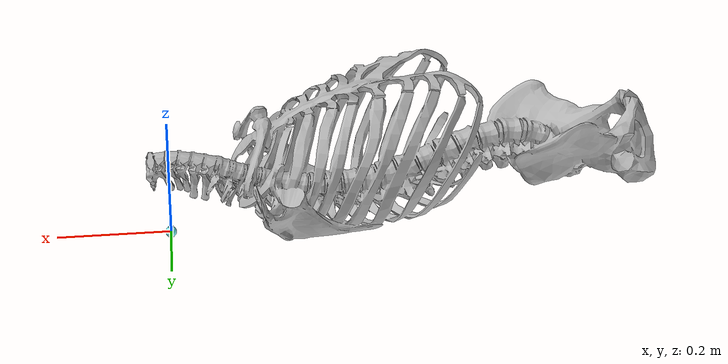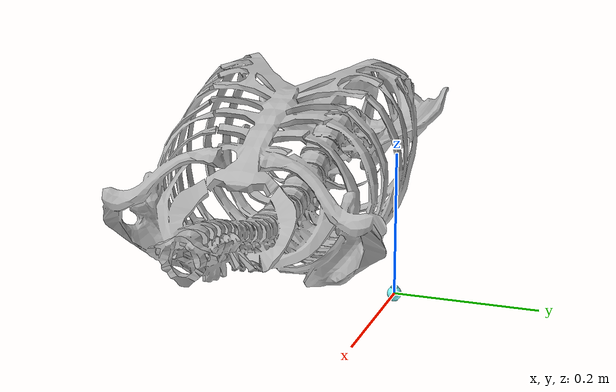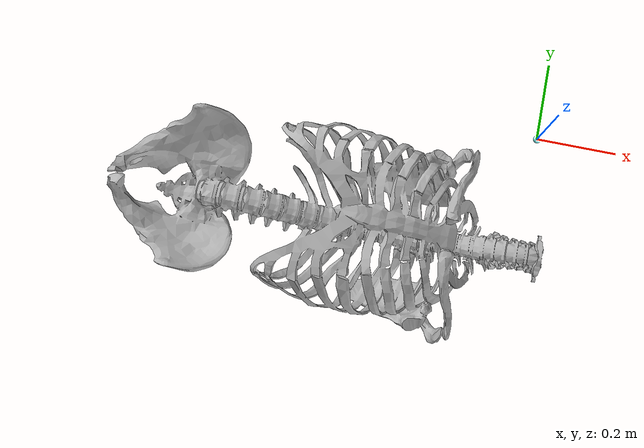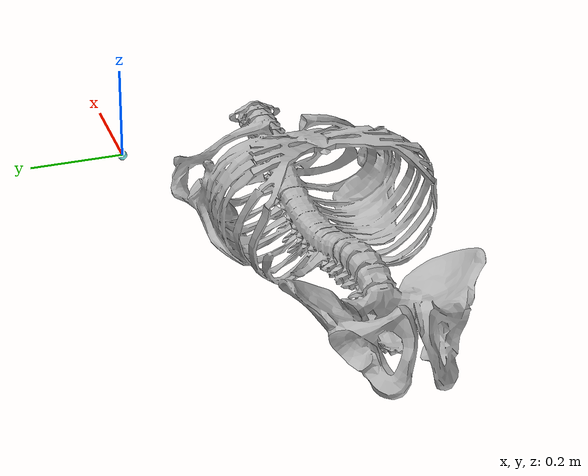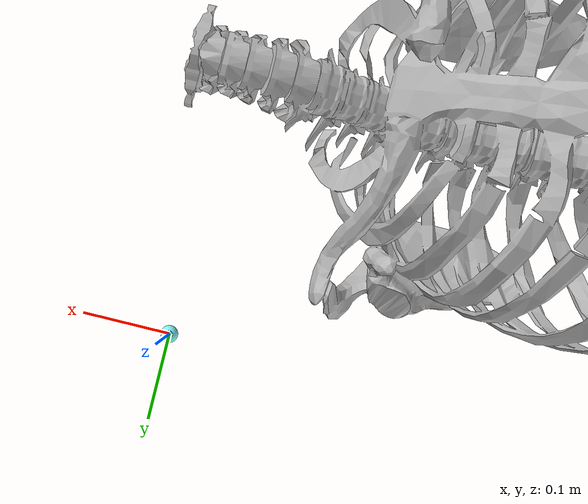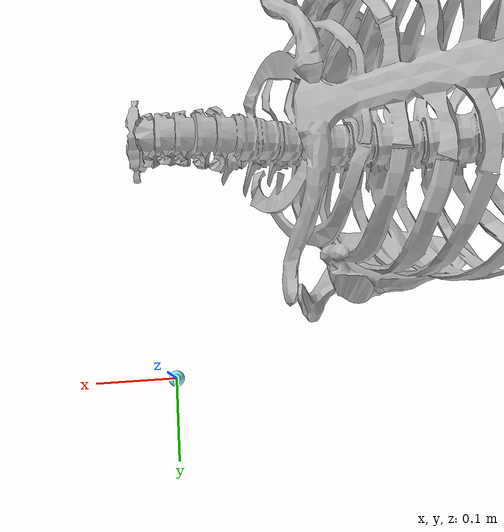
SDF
<sdf version="1.5">
 <world name="default">
  <include><uri>model://sun</uri></include>
  <gravity>0 0 0</gravity>
  <model name="DpSphere">
   <link name="link">
    <visual name="visual">
     <transparency>1.0</transparency>
     <geometry><sphere><radius>0.01</radius></sphere></geometry>
     <material>
      <ambient>0.5 1 1 1</ambient>
      <diffuse>0.5 1 1 1</diffuse>
      <specular>0.1 0.1 0.1 1</specular>
      <emissive>0 0 0 0</emissive>
     </material>
    </visual>
   </link>
  </model>
  <model name="ScopeTipSphere">
   <link name="link">
    <visual name="visual">
     <transparency>1.0</transparency>
     <geometry><sphere><radius>0.01</radius></sphere></geometry>
     <material>
      <ambient>0.5 1 1 1</ambient>
      <diffuse>0.5 1 1 1</diffuse>
      <specular>0.1 0.1 0.1 1</specular>
      <emissive>0 0 0 0</emissive>
     </material>
    </visual>
   </link>
  </model>
  <model name="RCMSphere">
   <link name="link">
    <visual name="visual">
     <transparency>0.0</transparency>
     <geometry><sphere><radius>0.01</radius></sphere></geometry>
     <material>
      <ambient>0.5 0 0 1</ambient>
      <diffuse>0.5 1 1 1</diffuse>
      <specular>0.1 0.1 0.1 1</specular>
      <emissive>0 0 0 0</emissive>
     </material>
    </visual>
   </link>
  </model>
  <model name="EndEffectorSphere">
   <link name="link">
    <visual name="visual">
     <transparency>0.0</transparency>
     <geometry><sphere><radius>0.01</radius></sphere></geometry>
     <material>
      <ambient>0.5 1 1 1</ambient>
      <diffuse>0.5 1 1 1</diffuse>
      <specular>0.1 0.1 0.1 1</specular>
      <emissive>0 0 0 0</emissive>
     </material>
    </visual>
   </link>
  </model>
  <model name="ScopeCylinder">
   <link name="cylinder_link">
    <visual name="visual">
     <transparency>0.0</transparency>
     <geometry><cylinder><radius>0.005</radius><length>0.02</length></cylinder></geometry>
     <material>
      <ambient>0.5 1 1 1</ambient>
      <diffuse>0.5 1 1 1</diffuse>
      <specular>0.1 0.1 0.1 1</specular>
      <emissive>0 0 0 0</emissive>
     </material>
    </visual>
   </link>
   <link name="camera_link">
    <pose>0 0 0 3.14159 -1.5708 1.5708</pose>
    <sensor type="camera" name="camera1">
     <update_rate>300.0</update_rate>
     <visualize>true</visualize>
     <camera name="head">
      <horizontal_fov>1.3962634</horizontal_fov>
      <image><width>800</width><height>800</height><format>R8G8B8</format></image>
      <clip><near>0.02</near><far>300</far></clip>
     </camera>
     <plugin name="camera_controller" filename="libgazebo_ros_camera.so">
      <cameraName>/cylinder_camera</cameraName>
      <alwaysOn>true</alwaysOn>
     </plugin>
    </sensor>
   </link>
  </model>
  <model name="ScopeCylinder2">
   <link name="cylinder_link">
    <visual name="visual">
     <transparency>0.0</transparency>
     <geometry><cylinder><radius>0.005</radius><length>0.02</length></cylinder></geometry>
     <material>
      <ambient>0.5 0.5 0.5 0.5</ambient>
      <diffuse>0.5 0.5 0.5 1</diffuse>
      <specular>0.1 0.1 0.1 1</specular>
      <emissive>0 0 0 0</emissive>
     </material>
    </visual>
   </link>
   <link name="camera_link">
    <pose>0 0 0 3.14159 -1.5708 1.5708</pose>
    <sensor type="camera" name="camera2">
     <update_rate>300.0</update_rate>
     <visualize>true</visualize>
     <camera name="head">
      <horizontal_fov>1.3962634</horizontal_fov>
      <image><width>800</width><height>800</height><format>R8G8B8</format></image>
      <clip><near>0.02</near><far>300</far></clip>
     </camera>
     <plugin name="camera_controller" filename="libgazebo_ros_camera.so">
      <cameraName>/cylinder_camera2</cameraName>
      <alwaysOn>true</alwaysOn>
     </plugin>
    </sensor>
   </link>
  </model>
  <model name="rigcage_mesh">
   <pose>-0.5 -0.3 0.1 0 0 -1.57</pose>
   <static>true</static>
   <link name="body">
    <visual name="visual">
     <geometry><mesh><uri>model://meshes/ribcage.dae</uri><scale>0.0012 0.0012 0.0012</scale></mesh></geometry>
     <material>
      <script><uri>model://materials/scripts/ribcage.material</uri><name>RibCageTexture</name></script>
     </material>
    </visual>
   </link>
  </model>
 </world>
</sdf>
